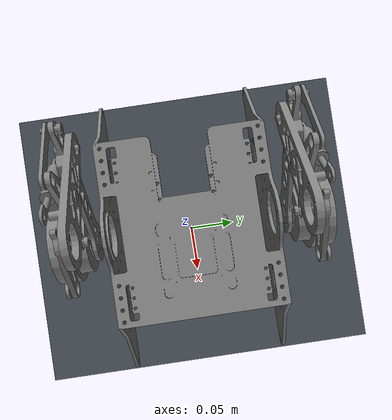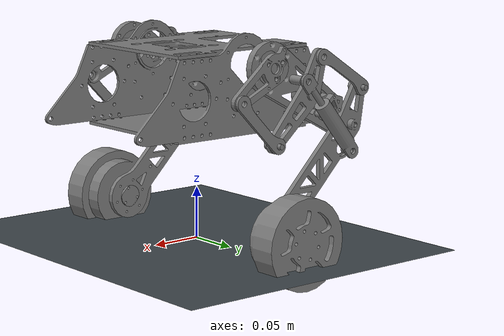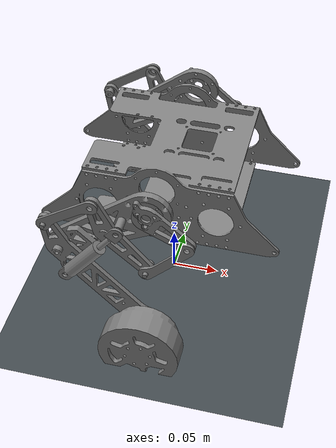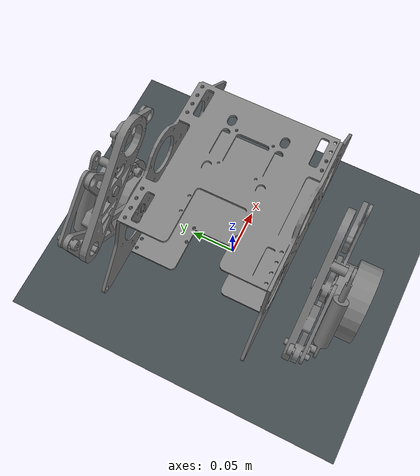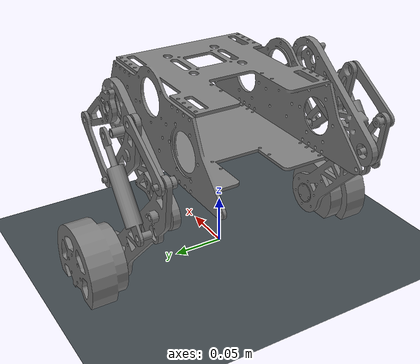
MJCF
<?xml version='1.0' encoding='utf-8'?>
<mujoco model="serial_stride_full_chassis_fixed_base">
  <compiler angle="radian" eulerseq="xyz" autolimits="true" balanceinertia="false" boundinertia="1e-8" meshdir=".." />
  <option gravity="0 0 -9.81" integrator="implicitfast" timestep="0.001" />
  <asset>
    <mesh name="base_link" file="meshes/base_link.stl" scale="0.001 0.001 0.001" />
    <mesh name="link_002" file="meshes/link_002.stl" scale="0.001 0.001 0.001" />
    <mesh name="link_003" file="meshes/link_003.stl" scale="0.001 0.001 0.001" />
    <mesh name="link_004" file="meshes/link_004.stl" scale="0.001 0.001 0.001" />
    <mesh name="link_005" file="meshes/link_005.stl" scale="0.001 0.001 0.001" />
    <mesh name="link_006" file="meshes/link_006.stl" scale="0.001 0.001 0.001" />
    <mesh name="link_007" file="meshes/link_007.stl" scale="0.001 0.001 0.001" />
    <mesh name="link_008" file="meshes/link_008.stl" scale="0.001 0.001 0.001" />
    <mesh name="link_009" file="meshes/link_009.stl" scale="0.001 0.001 0.001" />
    <mesh name="link_010" file="meshes/link_010.stl" scale="0.001 0.001 0.001" />
    <mesh name="link_011" file="meshes/link_011.stl" scale="0.001 0.001 0.001" />
    <mesh name="link_012" file="meshes/link_012.stl" scale="0.001 0.001 0.001" />
    <mesh name="link_013" file="meshes/link_013.stl" scale="0.001 0.001 0.001" />
    <mesh name="link_014" file="meshes/link_014.stl" scale="0.001 0.001 0.001" />
    <mesh name="link_015" file="meshes/link_015.stl" scale="0.001 0.001 0.001" />
    <mesh name="link_016" file="meshes/link_016.stl" scale="0.001 0.001 0.001" />
    <mesh name="link_017" file="meshes/link_017.stl" scale="0.001 0.001 0.001" />
    <mesh name="link_018" file="meshes/link_018.stl" scale="0.001 0.001 0.001" />
    <mesh name="link_019" file="meshes/link_019.stl" scale="0.001 0.001 0.001" />
    <mesh name="link_020" file="meshes/link_020.stl" scale="0.001 0.001 0.001" />
    <mesh name="link_021" file="meshes/link_021.stl" scale="0.001 0.001 0.001" />
    <mesh name="link_022" file="meshes/link_022.stl" scale="0.001 0.001 0.001" />
    <mesh name="link_023" file="meshes/link_023.stl" scale="0.001 0.001 0.001" />
    <mesh name="link_024" file="meshes/link_024.stl" scale="0.001 0.001 0.001" />
    <mesh name="link_025" file="meshes/link_025.stl" scale="0.001 0.001 0.001" />
  </asset>
  <worldbody>
    <geom name="ground" type="plane" size="2 2 0.1" pos="0 0 0" friction="0.8 0.005 0.0001" margin="0.001" solref="0.005 1" solimp="0.95 0.99 0.001" rgba="0.25 0.28 0.3 1" contype="1" conaffinity="2" /><body name="base_link" pos="0 0 0.1581569" euler="1.5707963267948966 0 3.141592653589793">
      <inertial pos="-0.0039338812 0.012467564 0.00023441092" mass="2.2" quat="0.99999671 0.0018797749 0.0011074883 -0.0013498581" diaginertia="0.0091017116 0.012533239 0.0081879634" />
      <geom name="base_link_mesh_1" type="mesh" mesh="base_link" pos="-6.988525e-06 0.044640137 0.069" euler="0 0 0" group="2" contype="0" conaffinity="0" />
      <site name="left_base_ref" type="sphere" pos="-6.988525e-06 -0.01914014 -0.107" quat="0 0 -0.7071067811865476 0.7071067811865476" size="0.003" rgba="1 0.2 0.2 1" group="3" />
      <site name="right_base_ref" type="sphere" pos="-6.988525e-06 -0.01914014 0.107" quat="0 0 -0.7071067811865476 0.7071067811865476" size="0.003" rgba="1 0.2 0.2 1" group="3" />
      <body name="link_002" pos="-6.988525e-06 -0.01914014 -0.107" euler="3.1415927 0 0">
        <joint name="left_joint_a" type="hinge" pos="0 0 0" axis="0 0 -1" ref="0.132318159422" limited="false" damping="0.05" armature="0.0001" />
        <inertial pos="0.043355873 -0.027890749 -0.0023513789" mass="0.068" quat="0.96005319 0.0057525521 -0.0053518464 -0.27970722" diaginertia="1.1089343e-05 0.000105919 0.00011583082" />
        <geom name="link_002_mesh_1" type="mesh" mesh="link_002" pos="0 -0.063780277 -0.176" euler="-3.1415927 0 0" group="2" contype="0" conaffinity="0" />
        <body name="link_005" pos="0.041902383 -0.027279852 0.0104">
          <joint name="link_005_joint" type="hinge" pos="0 0 0" axis="0 0 1" range="-1.57 1.57" limited="true" damping="0.05" armature="0.0001" />
          <inertial pos="-0.0086987915 -0.0056228993 -0.0059453537" mass="0.02" quat="0.94761075 0.0023155369 0.014721452 -0.31907958" diaginertia="1.37131295e-05 1.1046793e-06 1.4542671e-05" />
          <geom name="link_005_mesh_1" type="mesh" mesh="link_005" pos="-0.041902383 -0.036500425 -0.1864" euler="-3.1415927 0 0" group="2" contype="0" conaffinity="0" />
          <body name="link_006" pos="-0.041902383 -0.042944037 -0.0042">
            <joint name="link_006_joint" type="hinge" pos="0 0 0" axis="0 0 1" range="-1.57 1.57" limited="true" damping="0.05" armature="0.0001" />
            <inertial pos="0 0 -0.0030241159" mass="0.000773664835" quat="1 0 0 0" diaginertia="2.7147115e-08 2.7147115e-08 1e-08" />
            <site name="closure_001_b_site" type="sphere" pos="0 0 0.0031" quat="6.123234e-17 -1 -0 -0" size="0.003" rgba="0.2 0.8 1 1" group="3" />
            <geom name="link_006_mesh_1" type="mesh" mesh="link_006" pos="0 0.0064436116 -0.1822" euler="-3.1415927 0 0" group="2" contype="0" conaffinity="0" />
          <geom name="link_006_collision" type="mesh" friction="0.8 0.005 0.0001" margin="0.001" group="3" rgba="0.25 0.65 0.9 0.15" contype="2" conaffinity="1" mesh="link_006" pos="0 0.0064436116 -0.1822" euler="-3.1415927 0 0" /></body>
          <body name="link_007" pos="0.011896513 0.033977536 0.0015">
            <joint name="link_007_joint" type="hinge" pos="0 0 0" axis="0 0 1" range="-1.57 1.57" limited="true" damping="0.05" armature="0.0001" />
            <inertial pos="0.025983961 -0.0150738 -0.0015000061" mass="0.006" quat="0.95865809 0 0 -0.28456049" diaginertia="8.4666046e-08 2.8064641e-06 2.8821301e-06" />
            <geom name="link_007_mesh_1" type="mesh" mesh="link_007" pos="-0.053798896 -0.070477962 -0.1879" euler="-3.1415927 0 0" group="2" contype="0" conaffinity="0" />
            <body name="link_008" pos="0.05028286 -0.032735822 0.0038">
              <joint name="link_008_joint" type="hinge" pos="0 0 0" axis="0 0 1" range="-1.57 1.57" limited="true" damping="0.05" armature="0.0001" />
              <inertial pos="-1.6348715e-10 0 -0.012524115" mass="0.000773664845" quat="1 0 0 0" diaginertia="2.7147115e-08 2.7147117e-08 1e-08" />
              <site name="closure_002_b_site" type="sphere" pos="0 0 -0.00975" quat="6.123234e-17 -1 -0 -0" size="0.003" rgba="0.2 0.8 1 1" group="3" />
              <geom name="link_008_mesh_1" type="mesh" mesh="link_008" pos="-0.10408176 -0.03774214 -0.1917" euler="-3.1415927 0 0" group="2" contype="0" conaffinity="0" />
            <geom name="link_008_collision" type="mesh" friction="0.8 0.005 0.0001" margin="0.001" group="3" rgba="0.25 0.65 0.9 0.15" contype="2" conaffinity="1" mesh="link_008" pos="-0.10408176 -0.03774214 -0.1917" euler="-3.1415927 0 0" /></body>
          <geom name="link_007_collision" type="mesh" friction="0.8 0.005 0.0001" margin="0.001" group="3" rgba="0.25 0.65 0.9 0.15" contype="2" conaffinity="1" mesh="link_007" pos="-0.053798896 -0.070477962 -0.1879" euler="-3.1415927 0 0" /></body>
        <geom name="link_005_collision" type="mesh" friction="0.8 0.005 0.0001" margin="0.001" group="3" rgba="0.25 0.65 0.9 0.15" contype="2" conaffinity="1" mesh="link_005" pos="-0.041902383 -0.036500425 -0.1864" euler="-3.1415927 0 0" /></body>
        <body name="link_009" pos="0.092185243 -0.060015673 0.0113">
          <joint name="link_009_joint" type="hinge" pos="0 0 0" axis="0 0 1" range="-1.57 1.57" limited="true" damping="0.05" armature="0.0001" />
          <inertial pos="-0.044881355 -0.044738748 -0.0065144472" mass="0.056" quat="0.93100646 8.9174307e-05 0.00055309838 -0.36500228" diaginertia="0.00017003599 5.9620694e-06 0.00017553873" />
          <site name="closure_002_a_site" type="sphere" pos="0.011896513 0.033977536 -0.00535" quat="6.123234e-17 -1 -0 -0" size="0.003" rgba="0.2 0.8 1 1" group="3" />
          <site name="closure_003_a_site" type="sphere" pos="-0.0096563348 -0.022701383 0.003000003" quat="6.123234e-17 -1 -0 -0" size="0.003" rgba="0.2 0.8 1 1" group="3" />
          <geom name="link_009_mesh_1" type="mesh" mesh="link_009" pos="-0.092185243 -0.0037646034 -0.1873" euler="-3.1415927 0 0" group="2" contype="0" conaffinity="0" />
          <body name="link_010" pos="-0.092185243 -0.094476881 -0.002">
            <joint name="left_wheel_joint" type="hinge" pos="0 0 0" axis="0 0 1" limited="false" />
            <inertial pos="-5.6331932e-10 5.1670869e-10 0.02192814" mass="0.6" quat="0.92610537 6.6177875e-09 5.0505982e-09 -0.37726496" diaginertia="0.00031780174 0.000317777655 0.000484610865" />
            <site name="left_wheel_center" type="sphere" pos="0 0 0" size="0.004" rgba="0.2 1 0.2 1" group="3" />
            <geom name="link_010_mesh_1" type="mesh" mesh="link_010" pos="0 0.090712278 -0.1853" euler="-3.1415927 0 0" group="2" contype="0" conaffinity="0" />
          <geom name="left_wheel_collision" type="cylinder" pos="0 0 0" size="0.0429968 0.02475" friction="0.8 0.005 0.0001" margin="0.001" group="3" rgba="0.15 0.15 0.15 0.35" contype="2" conaffinity="1" /></body>
        <geom name="link_009_collision" type="mesh" friction="0.8 0.005 0.0001" margin="0.001" group="3" rgba="0.25 0.65 0.9 0.15" contype="2" conaffinity="1" mesh="link_009" pos="-0.092185243 -0.0037646034 -0.1873" euler="-3.1415927 0 0" /></body>
        <body name="link_011" pos="0.025674084 -0.012353157 0.0148">
          <joint name="link_011_joint" type="hinge" pos="0 0 0" axis="0 0 1" range="-1.57 1.57" limited="true" damping="0.05" armature="0.0001" />
          <inertial pos="0.009774161 -0.012096566 0.0058500007" mass="0.0015472861" quat="0.94282022 0 0 0.33330173" diaginertia="2.4763345e-07 1.47072335e-08 2.57431515e-07" />
          <geom name="link_011_mesh_1" type="mesh" mesh="link_011" pos="-0.025674084 -0.05142712 -0.1908" euler="-3.1415927 0 0" group="2" contype="0" conaffinity="0" />
          <body name="link_012" pos="0.017888614 -0.022139066 0.00585" euler="1.5707963 0.67960678 0">
            <joint name="link_012_joint" type="slide" pos="0 0 0" axis="0 0 1" range="-0.0231 0" limited="true" ref="-0.00676817164473078" armature="0.0001" />
            <inertial pos="0 -2.1792665e-09 0.027778315" mass="0.011455285" quat="1 -1.2953341e-08 0 0" diaginertia="3.25386905e-06 3.2636644e-06 3.1061596e-07" />
            <geom name="link_012_mesh_1" type="mesh" mesh="link_012" pos="-0.052291101 -0.19665 -0.004597767" euler="1.5707963 0 0.67960678" group="2" contype="0" conaffinity="0" />
            <body name="link_013" pos="0 0.00135 0.062" euler="-1.5707963 0 -0.67960678">
              <joint name="link_013_joint" type="hinge" pos="0 0 0" axis="0 0 1" range="-1.57 1.57" limited="true" damping="0.05" armature="0.0001" />
              <inertial pos="3.5097968e-09 1.3745365e-09 -0.0076999969" mass="0.00022249231" quat="1 0 0 0" diaginertia="1e-08 1e-08 1e-08" />
              <site name="closure_003_b_site" type="sphere" pos="2.725e-09 4.85e-10 -0.007699997" quat="6.123234e-17 -1 -0 -0" size="0.003" rgba="0.2 0.8 1 1" group="3" />
              <geom name="link_013_mesh_1" type="mesh" mesh="link_013" pos="-0.082528905 0.01893678 -0.198" euler="-3.1415927 0 0" group="2" contype="0" conaffinity="0" />
            <geom name="link_013_collision" type="mesh" friction="0.8 0.005 0.0001" margin="0.001" group="3" rgba="0.25 0.65 0.9 0.15" contype="2" conaffinity="1" mesh="link_013" pos="-0.082528905 0.01893678 -0.198" euler="-3.1415927 0 0" /></body>
          <geom name="link_012_collision" type="mesh" friction="0.8 0.005 0.0001" margin="0.001" group="3" rgba="0.25 0.65 0.9 0.15" contype="2" conaffinity="1" mesh="link_012" pos="-0.052291101 -0.19665 -0.004597767" euler="1.5707963 0 0.67960678" /></body>
        <geom name="link_011_collision" type="mesh" friction="0.8 0.005 0.0001" margin="0.001" group="3" rgba="0.25 0.65 0.9 0.15" contype="2" conaffinity="1" mesh="link_011" pos="-0.025674084 -0.05142712 -0.1908" euler="-3.1415927 0 0" /></body>
      <geom name="link_002_collision" type="mesh" friction="0.8 0.005 0.0001" margin="0.001" group="3" rgba="0.25 0.65 0.9 0.15" contype="2" conaffinity="1" mesh="link_002" pos="0 -0.063780277 -0.176" euler="-3.1415927 0 0" /></body>
      <body name="link_003" pos="-6.988525e-06 -0.01914014 -0.107" euler="3.1415927 0 0">
        <joint name="left_joint_b" type="hinge" pos="0 0 0" axis="0 0 1" ref="0.132318159422" limited="false" damping="0.05" armature="0.0001" />
        <inertial pos="-0.013750144 -0.0086053748 0.0051026116" mass="0.014" quat="0.95476232 -0.00082331343 0.0018096997 0.29736334" diaginertia="8.1373094e-07 5.4510139e-06 6.2085423e-06" />
        <geom name="link_003_mesh_1" type="mesh" mesh="link_003" pos="0 -0.063780277 -0.176" euler="-3.1415927 0 0" group="2" contype="0" conaffinity="0" />
        <body name="link_004" pos="-0.041902383 -0.027279852 0.0123">
          <joint name="link_004_joint" type="hinge" pos="0 0 0" axis="0 0 1" range="-1.57 1.57" limited="true" damping="0.05" armature="0.0001" />
          <inertial pos="0.019845961 -0.022550464 -0.0014999969" mass="0.006" quat="0.92621212 0 0 0.3770028" diaginertia="2.8064644e-06 8.4666035e-08 2.8821304e-06" />
          <site name="closure_001_a_site" type="sphere" pos="0.041902383 -0.042944037 -0.003" quat="6.123234e-17 -1 -0 -0" size="0.003" rgba="0.2 0.8 1 1" group="3" />
          <geom name="link_004_mesh_1" type="mesh" mesh="link_004" pos="0.041902383 -0.036500425 -0.1883" euler="-3.1415927 0 0" group="2" contype="0" conaffinity="0" />
        <geom name="link_004_collision" type="mesh" friction="0.8 0.005 0.0001" margin="0.001" group="3" rgba="0.25 0.65 0.9 0.15" contype="2" conaffinity="1" mesh="link_004" pos="0.041902383 -0.036500425 -0.1883" euler="-3.1415927 0 0" /></body>
      <geom name="link_003_collision" type="mesh" friction="0.8 0.005 0.0001" margin="0.001" group="3" rgba="0.25 0.65 0.9 0.15" contype="2" conaffinity="1" mesh="link_003" pos="0 -0.063780277 -0.176" euler="-3.1415927 0 0" /></body>
      <body name="link_014" pos="-6.988525e-06 -0.01914014 0.107">
        <joint name="right_joint_a" type="hinge" pos="0 0 0" axis="0 0 1" ref="0.132318159422" limited="false" damping="0.05" armature="0.0001" />
        <inertial pos="0.043355873 0.027890749 -0.002351379" mass="0.068" quat="0.96005319 -0.0057525511 -0.0053518473 0.27970722" diaginertia="1.1089343e-05 0.000105919 0.00011583082" />
        <geom name="link_014_mesh_1" type="mesh" mesh="link_014" pos="0 0.063780277 -0.038" euler="0 0 0" group="2" contype="0" conaffinity="0" />
        <body name="link_017" pos="0.041902383 0.027279852 0.0104">
          <joint name="link_017_joint" type="hinge" pos="0 0 0" axis="0 0 1" range="-1.57 1.57" limited="true" damping="0.05" armature="0.0001" />
          <inertial pos="-0.0086987905 0.0056228986 -0.0059453564" mass="0.02" quat="0.94761075 -0.0023155297 0.014721406 0.31907958" diaginertia="1.37131295e-05 1.1046793e-06 1.4542671e-05" />
          <site name="closure_005_b_site" type="sphere" pos="-0.041902383 0.042944037 -0.0043750004" quat="1 0 -0 0" size="0.003" rgba="0.2 0.8 1 1" group="3" />
          <geom name="link_017_mesh_1" type="mesh" mesh="link_017" pos="-0.041902383 0.036500425 -0.0484" euler="0 0 0" group="2" contype="0" conaffinity="0" />
          <body name="link_019" pos="0.011896513 -0.033977536 0.0015">
            <joint name="link_019_joint" type="hinge" pos="0 0 0" axis="0 0 1" range="-1.57 1.57" limited="true" damping="0.05" armature="0.0001" />
            <inertial pos="0.025983961 0.0150738 -0.0014999985" mass="0.006" quat="0.95865809 0 0 0.28456049" diaginertia="8.4666046e-08 2.8064641e-06 2.8821301e-06" />
            <geom name="link_019_mesh_1" type="mesh" mesh="link_019" pos="-0.053798896 0.070477962 -0.0499" euler="0 0 0" group="2" contype="0" conaffinity="0" />
            <body name="link_021" pos="0.05028286 0.032735822 -0.0057">
              <joint name="link_021_joint" type="hinge" pos="0 0 0" axis="0 0 1" range="-1.57 1.57" limited="true" damping="0.05" armature="0.0001" />
              <inertial pos="-1.6983999e-10 -1.0368893e-10 -0.00302412" mass="0.000773664845" quat="1 0 0 0" diaginertia="2.7147115e-08 2.7147117e-08 1e-08" />
              <site name="closure_006_a_site" type="sphere" pos="0 0 -0.00025" quat="1 0 -0 0" size="0.003" rgba="0.2 0.8 1 1" group="3" />
              <geom name="link_021_mesh_1" type="mesh" mesh="link_021" pos="-0.10408176 0.03774214 -0.0442" euler="0 0 0" group="2" contype="0" conaffinity="0" />
            <geom name="link_021_collision" type="mesh" friction="0.8 0.005 0.0001" margin="0.001" group="3" rgba="0.25 0.65 0.9 0.15" contype="2" conaffinity="1" mesh="link_021" pos="-0.10408176 0.03774214 -0.0442" euler="0 0 0" /></body>
          <geom name="link_019_collision" type="mesh" friction="0.8 0.005 0.0001" margin="0.001" group="3" rgba="0.25 0.65 0.9 0.15" contype="2" conaffinity="1" mesh="link_019" pos="-0.053798896 0.070477962 -0.0499" euler="0 0 0" /></body>
        <geom name="link_017_collision" type="mesh" friction="0.8 0.005 0.0001" margin="0.001" group="3" rgba="0.25 0.65 0.9 0.15" contype="2" conaffinity="1" mesh="link_017" pos="-0.041902383 0.036500425 -0.0484" euler="0 0 0" /></body>
        <body name="link_020" pos="0.092185243 0.060015673 0.0113">
          <joint name="link_020_joint" type="hinge" pos="0 0 0" axis="0 0 1" range="-1.57 1.57" limited="true" damping="0.05" armature="0.0001" />
          <inertial pos="-0.044881355 0.044738748 -0.006514451" mass="0.056" quat="0.93100646 -8.9174364e-05 0.00055309824 0.36500228" diaginertia="0.00017003599 5.9620694e-06 0.00017553873" />
          <site name="closure_006_b_site" type="sphere" pos="0.011896513 -0.033977536 -0.00535" quat="1 0 -0 0" size="0.003" rgba="0.2 0.8 1 1" group="3" />
          <site name="closure_007_a_site" type="sphere" pos="-0.0096563348 0.022701383 0.0029999992" quat="1 0 -0 0" size="0.003" rgba="0.2 0.8 1 1" group="3" />
          <geom name="link_020_mesh_1" type="mesh" mesh="link_020" pos="-0.092185243 0.0037646034 -0.0493" euler="0 0 0" group="2" contype="0" conaffinity="0" />
          <body name="link_025" pos="-0.092185243 0.094476881 0.0395">
            <joint name="right_wheel_joint" type="hinge" pos="0 0 0" axis="0 0 1" limited="false" />
            <inertial pos="-5.644982e-10 -5.174013e-10 -0.019571861" mass="0.6" quat="0.92610546 -6.6227602e-09 5.0848299e-09 0.37726473" diaginertia="0.00031780174 0.000317777655 0.000484610865" />
            <site name="right_wheel_center" type="sphere" pos="0 0 0" size="0.004" rgba="0.2 1 0.2 1" group="3" />
            <geom name="link_025_mesh_1" type="mesh" mesh="link_025" pos="0 -0.090712278 -0.0888" euler="0 0 0" group="2" contype="0" conaffinity="0" />
          <geom name="right_wheel_collision" type="cylinder" pos="0 0 0" size="0.0429968 0.02475" friction="0.8 0.005 0.0001" margin="0.001" group="3" rgba="0.15 0.15 0.15 0.35" contype="2" conaffinity="1" /></body>
        <geom name="link_020_collision" type="mesh" friction="0.8 0.005 0.0001" margin="0.001" group="3" rgba="0.25 0.65 0.9 0.15" contype="2" conaffinity="1" mesh="link_020" pos="-0.092185243 0.0037646034 -0.0493" euler="0 0 0" /></body>
        <body name="link_022" pos="0.025674084 0.012353157 0.022">
          <joint name="link_022_joint" type="hinge" pos="0 0 0" axis="0 0 1" range="-1.57 1.57" limited="true" damping="0.05" armature="0.0001" />
          <inertial pos="0.0097741539 0.012096557 -0.0013500001" mass="0.0015472861" quat="0.94282022 0 0 -0.33330173" diaginertia="2.4763345e-07 1.47072335e-08 2.57431515e-07" />
          <geom name="link_022_mesh_1" type="mesh" mesh="link_022" pos="-0.025674084 0.05142712 -0.06" euler="0 0 0" group="2" contype="0" conaffinity="0" />
          <body name="link_023" pos="0.017888614 0.022139066 -0.00135" euler="-1.5707963 0.67960678 0">
            <joint name="link_023_joint" type="slide" pos="0 0 0" axis="0 0 1" range="-0.0231 0" limited="true" ref="-0.00676817159312371" armature="0.0001" />
            <inertial pos="0 6.0886668e-10 0.027778318" mass="0.011455285" quat="1 0 0 0" diaginertia="3.25386905e-06 3.2636644e-06 3.1061596e-07" />
            <geom name="link_023_mesh_1" type="mesh" mesh="link_023" pos="-0.052291101 0.05865 -0.004597767" euler="1.5707963 0 0.67960678" group="2" contype="0" conaffinity="0" />
            <body name="link_024" pos="0 -0.00135 0.062" euler="1.5707963 0 0.67960678">
              <joint name="link_024_joint" type="hinge" pos="0 0 0" axis="0 0 1" range="-1.57 1.57" limited="true" damping="0.05" armature="0.0001" />
              <inertial pos="3.509788e-09 -1.374538e-09 -0.0077000008" mass="0.00022249231" quat="1 0 0 0" diaginertia="1e-08 1e-08 1e-08" />
              <site name="closure_007_b_site" type="sphere" pos="2.725e-09 -4.85e-10 -0.0077000008" quat="1 0 -0 0" size="0.003" rgba="0.2 0.8 1 1" group="3" />
              <geom name="link_024_mesh_1" type="mesh" mesh="link_024" pos="-0.082528905 -0.01893678 -0.06" euler="0 0 0" group="2" contype="0" conaffinity="0" />
            <geom name="link_024_collision" type="mesh" friction="0.8 0.005 0.0001" margin="0.001" group="3" rgba="0.25 0.65 0.9 0.15" contype="2" conaffinity="1" mesh="link_024" pos="-0.082528905 -0.01893678 -0.06" euler="0 0 0" /></body>
          <geom name="link_023_collision" type="mesh" friction="0.8 0.005 0.0001" margin="0.001" group="3" rgba="0.25 0.65 0.9 0.15" contype="2" conaffinity="1" mesh="link_023" pos="-0.052291101 0.05865 -0.004597767" euler="1.5707963 0 0.67960678" /></body>
        <geom name="link_022_collision" type="mesh" friction="0.8 0.005 0.0001" margin="0.001" group="3" rgba="0.25 0.65 0.9 0.15" contype="2" conaffinity="1" mesh="link_022" pos="-0.025674084 0.05142712 -0.06" euler="0 0 0" /></body>
      <geom name="link_014_collision" type="mesh" friction="0.8 0.005 0.0001" margin="0.001" group="3" rgba="0.25 0.65 0.9 0.15" contype="2" conaffinity="1" mesh="link_014" pos="0 0.063780277 -0.038" euler="0 0 0" /></body>
      <body name="link_015" pos="-6.988525e-06 -0.01914014 0.107">
        <joint name="right_joint_b" type="hinge" pos="0 0 0" axis="0 0 -1" ref="0.132318159422" limited="false" damping="0.05" armature="0.0001" />
        <inertial pos="-0.013750144 0.0086053748 0.0051026154" mass="0.014" quat="0.95476232 0.00082331345 0.0018096997 -0.29736334" diaginertia="8.1373094e-07 5.4510139e-06 6.2085423e-06" />
        <geom name="link_015_mesh_1" type="mesh" mesh="link_015" pos="0 0.063780277 -0.038" euler="0 0 0" group="2" contype="0" conaffinity="0" />
        <body name="link_016" pos="-0.041902383 0.027279852 0.0093">
          <joint name="link_016_joint" type="hinge" pos="0 0 0" axis="0 0 1" range="-1.57 1.57" limited="true" damping="0.05" armature="0.0001" />
          <inertial pos="0.019845961 0.022550464 0.0014999992" mass="0.006" quat="0.92621212 0 0 -0.3770028" diaginertia="2.8064644e-06 8.4666035e-08 2.8821304e-06" />
          <geom name="link_016_mesh_1" type="mesh" mesh="link_016" pos="0.041902383 0.036500425 -0.0473" euler="0 0 0" group="2" contype="0" conaffinity="0" />
          <body name="link_018" pos="0.041902383 0.042944037 0.0015">
            <joint name="link_018_joint" type="hinge" pos="0 0 0" axis="0 0 1" range="-1.57 1.57" limited="true" damping="0.05" armature="0.0001" />
            <inertial pos="0 0 -0.0076241207" mass="0.000773664835" quat="1 0 0 0" diaginertia="2.7147115e-08 2.7147115e-08 1e-08" />
            <site name="closure_005_a_site" type="sphere" pos="0 -2.35e-10 -0.0047750004" quat="1 0 -0 0" size="0.003" rgba="0.2 0.8 1 1" group="3" />
            <geom name="link_018_mesh_1" type="mesh" mesh="link_018" pos="0 -0.0064436116 -0.0488" euler="0 0 0" group="2" contype="0" conaffinity="0" />
          <geom name="link_018_collision" type="mesh" friction="0.8 0.005 0.0001" margin="0.001" group="3" rgba="0.25 0.65 0.9 0.15" contype="2" conaffinity="1" mesh="link_018" pos="0 -0.0064436116 -0.0488" euler="0 0 0" /></body>
        <geom name="link_016_collision" type="mesh" friction="0.8 0.005 0.0001" margin="0.001" group="3" rgba="0.25 0.65 0.9 0.15" contype="2" conaffinity="1" mesh="link_016" pos="0.041902383 0.036500425 -0.0473" euler="0 0 0" /></body>
      <geom name="link_015_collision" type="mesh" friction="0.8 0.005 0.0001" margin="0.001" group="3" rgba="0.25 0.65 0.9 0.15" contype="2" conaffinity="1" mesh="link_015" pos="0 0.063780277 -0.038" euler="0 0 0" /></body>
    <geom name="base_collision" type="box" pos="0 0 0" size="0.12581208 0.047640137 0.072" friction="0.8 0.005 0.0001" margin="0.001" group="3" rgba="0.2 0.45 0.8 0.25" contype="2" conaffinity="1" /></body>
  </worldbody>
  <contact>
    <exclude body1="base_link" body2="link_002" />
    <exclude body1="base_link" body2="link_003" />
    <exclude body1="base_link" body2="link_004" />
    <exclude body1="base_link" body2="link_005" />
    <exclude body1="base_link" body2="link_006" />
    <exclude body1="base_link" body2="link_007" />
    <exclude body1="base_link" body2="link_008" />
    <exclude body1="base_link" body2="link_009" />
    <exclude body1="base_link" body2="link_011" />
    <exclude body1="base_link" body2="link_012" />
    <exclude body1="base_link" body2="link_013" />
    <exclude body1="base_link" body2="link_014" />
    <exclude body1="base_link" body2="link_015" />
    <exclude body1="base_link" body2="link_016" />
    <exclude body1="base_link" body2="link_017" />
    <exclude body1="base_link" body2="link_018" />
    <exclude body1="base_link" body2="link_019" />
    <exclude body1="base_link" body2="link_020" />
    <exclude body1="base_link" body2="link_021" />
    <exclude body1="base_link" body2="link_022" />
    <exclude body1="base_link" body2="link_023" />
    <exclude body1="base_link" body2="link_024" />
    <exclude body1="link_002" body2="link_003" />
    <exclude body1="link_002" body2="link_004" />
    <exclude body1="link_002" body2="link_005" />
    <exclude body1="link_002" body2="link_006" />
    <exclude body1="link_002" body2="link_007" />
    <exclude body1="link_002" body2="link_008" />
    <exclude body1="link_002" body2="link_009" />
    <exclude body1="link_002" body2="link_011" />
    <exclude body1="link_002" body2="link_012" />
    <exclude body1="link_002" body2="link_013" />
    <exclude body1="link_003" body2="link_004" />
    <exclude body1="link_003" body2="link_005" />
    <exclude body1="link_003" body2="link_006" />
    <exclude body1="link_003" body2="link_007" />
    <exclude body1="link_003" body2="link_008" />
    <exclude body1="link_003" body2="link_009" />
    <exclude body1="link_003" body2="link_011" />
    <exclude body1="link_003" body2="link_012" />
    <exclude body1="link_003" body2="link_013" />
    <exclude body1="link_004" body2="link_005" />
    <exclude body1="link_004" body2="link_006" />
    <exclude body1="link_004" body2="link_007" />
    <exclude body1="link_004" body2="link_008" />
    <exclude body1="link_004" body2="link_009" />
    <exclude body1="link_004" body2="link_011" />
    <exclude body1="link_004" body2="link_012" />
    <exclude body1="link_004" body2="link_013" />
    <exclude body1="link_005" body2="link_006" />
    <exclude body1="link_005" body2="link_007" />
    <exclude body1="link_005" body2="link_008" />
    <exclude body1="link_005" body2="link_009" />
    <exclude body1="link_005" body2="link_011" />
    <exclude body1="link_005" body2="link_012" />
    <exclude body1="link_005" body2="link_013" />
    <exclude body1="link_006" body2="link_007" />
    <exclude body1="link_006" body2="link_008" />
    <exclude body1="link_006" body2="link_009" />
    <exclude body1="link_006" body2="link_011" />
    <exclude body1="link_006" body2="link_012" />
    <exclude body1="link_006" body2="link_013" />
    <exclude body1="link_007" body2="link_008" />
    <exclude body1="link_007" body2="link_009" />
    <exclude body1="link_007" body2="link_011" />
    <exclude body1="link_007" body2="link_012" />
    <exclude body1="link_007" body2="link_013" />
    <exclude body1="link_008" body2="link_009" />
    <exclude body1="link_008" body2="link_011" />
    <exclude body1="link_008" body2="link_012" />
    <exclude body1="link_008" body2="link_013" />
    <exclude body1="link_009" body2="link_011" />
    <exclude body1="link_009" body2="link_012" />
    <exclude body1="link_009" body2="link_013" />
    <exclude body1="link_011" body2="link_012" />
    <exclude body1="link_011" body2="link_013" />
    <exclude body1="link_012" body2="link_013" />
    <exclude body1="link_014" body2="link_015" />
    <exclude body1="link_014" body2="link_016" />
    <exclude body1="link_014" body2="link_017" />
    <exclude body1="link_014" body2="link_018" />
    <exclude body1="link_014" body2="link_019" />
    <exclude body1="link_014" body2="link_020" />
    <exclude body1="link_014" body2="link_021" />
    <exclude body1="link_014" body2="link_022" />
    <exclude body1="link_014" body2="link_023" />
    <exclude body1="link_014" body2="link_024" />
    <exclude body1="link_015" body2="link_016" />
    <exclude body1="link_015" body2="link_017" />
    <exclude body1="link_015" body2="link_018" />
    <exclude body1="link_015" body2="link_019" />
    <exclude body1="link_015" body2="link_020" />
    <exclude body1="link_015" body2="link_021" />
    <exclude body1="link_015" body2="link_022" />
    <exclude body1="link_015" body2="link_023" />
    <exclude body1="link_015" body2="link_024" />
    <exclude body1="link_016" body2="link_017" />
    <exclude body1="link_016" body2="link_018" />
    <exclude body1="link_016" body2="link_019" />
    <exclude body1="link_016" body2="link_020" />
    <exclude body1="link_016" body2="link_021" />
    <exclude body1="link_016" body2="link_022" />
    <exclude body1="link_016" body2="link_023" />
    <exclude body1="link_016" body2="link_024" />
    <exclude body1="link_017" body2="link_018" />
    <exclude body1="link_017" body2="link_019" />
    <exclude body1="link_017" body2="link_020" />
    <exclude body1="link_017" body2="link_021" />
    <exclude body1="link_017" body2="link_022" />
    <exclude body1="link_017" body2="link_023" />
    <exclude body1="link_017" body2="link_024" />
    <exclude body1="link_018" body2="link_019" />
    <exclude body1="link_018" body2="link_020" />
    <exclude body1="link_018" body2="link_021" />
    <exclude body1="link_018" body2="link_022" />
    <exclude body1="link_018" body2="link_023" />
    <exclude body1="link_018" body2="link_024" />
    <exclude body1="link_019" body2="link_020" />
    <exclude body1="link_019" body2="link_021" />
    <exclude body1="link_019" body2="link_022" />
    <exclude body1="link_019" body2="link_023" />
    <exclude body1="link_019" body2="link_024" />
    <exclude body1="link_020" body2="link_021" />
    <exclude body1="link_020" body2="link_022" />
    <exclude body1="link_020" body2="link_023" />
    <exclude body1="link_020" body2="link_024" />
    <exclude body1="link_021" body2="link_022" />
    <exclude body1="link_021" body2="link_023" />
    <exclude body1="link_021" body2="link_024" />
    <exclude body1="link_022" body2="link_023" />
    <exclude body1="link_022" body2="link_024" />
    <exclude body1="link_023" body2="link_024" />
  <pair geom1="ground" geom2="base_collision" condim="3" friction="0.8 0.005 0.0001" margin="0.001" solref="0.005 1" solimp="0.95 0.99 0.001" /><pair geom1="ground" geom2="link_002_collision" condim="3" friction="0.8 0.005 0.0001" margin="0.001" solref="0.005 1" solimp="0.95 0.99 0.001" /><pair geom1="ground" geom2="link_003_collision" condim="3" friction="0.8 0.005 0.0001" margin="0.001" solref="0.005 1" solimp="0.95 0.99 0.001" /><pair geom1="ground" geom2="link_004_collision" condim="3" friction="0.8 0.005 0.0001" margin="0.001" solref="0.005 1" solimp="0.95 0.99 0.001" /><pair geom1="ground" geom2="link_005_collision" condim="3" friction="0.8 0.005 0.0001" margin="0.001" solref="0.005 1" solimp="0.95 0.99 0.001" /><pair geom1="ground" geom2="link_006_collision" condim="3" friction="0.8 0.005 0.0001" margin="0.001" solref="0.005 1" solimp="0.95 0.99 0.001" /><pair geom1="ground" geom2="link_007_collision" condim="3" friction="0.8 0.005 0.0001" margin="0.001" solref="0.005 1" solimp="0.95 0.99 0.001" /><pair geom1="ground" geom2="link_008_collision" condim="3" friction="0.8 0.005 0.0001" margin="0.001" solref="0.005 1" solimp="0.95 0.99 0.001" /><pair geom1="ground" geom2="link_009_collision" condim="3" friction="0.8 0.005 0.0001" margin="0.001" solref="0.005 1" solimp="0.95 0.99 0.001" /><pair geom1="ground" geom2="link_011_collision" condim="3" friction="0.8 0.005 0.0001" margin="0.001" solref="0.005 1" solimp="0.95 0.99 0.001" /><pair geom1="ground" geom2="link_012_collision" condim="3" friction="0.8 0.005 0.0001" margin="0.001" solref="0.005 1" solimp="0.95 0.99 0.001" /><pair geom1="ground" geom2="link_013_collision" condim="3" friction="0.8 0.005 0.0001" margin="0.001" solref="0.005 1" solimp="0.95 0.99 0.001" /><pair geom1="ground" geom2="link_014_collision" condim="3" friction="0.8 0.005 0.0001" margin="0.001" solref="0.005 1" solimp="0.95 0.99 0.001" /><pair geom1="ground" geom2="link_015_collision" condim="3" friction="0.8 0.005 0.0001" margin="0.001" solref="0.005 1" solimp="0.95 0.99 0.001" /><pair geom1="ground" geom2="link_016_collision" condim="3" friction="0.8 0.005 0.0001" margin="0.001" solref="0.005 1" solimp="0.95 0.99 0.001" /><pair geom1="ground" geom2="link_017_collision" condim="3" friction="0.8 0.005 0.0001" margin="0.001" solref="0.005 1" solimp="0.95 0.99 0.001" /><pair geom1="ground" geom2="link_018_collision" condim="3" friction="0.8 0.005 0.0001" margin="0.001" solref="0.005 1" solimp="0.95 0.99 0.001" /><pair geom1="ground" geom2="link_019_collision" condim="3" friction="0.8 0.005 0.0001" margin="0.001" solref="0.005 1" solimp="0.95 0.99 0.001" /><pair geom1="ground" geom2="link_020_collision" condim="3" friction="0.8 0.005 0.0001" margin="0.001" solref="0.005 1" solimp="0.95 0.99 0.001" /><pair geom1="ground" geom2="link_021_collision" condim="3" friction="0.8 0.005 0.0001" margin="0.001" solref="0.005 1" solimp="0.95 0.99 0.001" /><pair geom1="ground" geom2="link_022_collision" condim="3" friction="0.8 0.005 0.0001" margin="0.001" solref="0.005 1" solimp="0.95 0.99 0.001" /><pair geom1="ground" geom2="link_023_collision" condim="3" friction="0.8 0.005 0.0001" margin="0.001" solref="0.005 1" solimp="0.95 0.99 0.001" /><pair geom1="ground" geom2="link_024_collision" condim="3" friction="0.8 0.005 0.0001" margin="0.001" solref="0.005 1" solimp="0.95 0.99 0.001" /><pair geom1="ground" geom2="left_wheel_collision" condim="3" friction="0.8 0.005 0.0001" margin="0.001" solref="0.005 1" solimp="0.95 0.99 0.001" /><pair geom1="ground" geom2="right_wheel_collision" condim="3" friction="0.8 0.005 0.0001" margin="0.001" solref="0.005 1" solimp="0.95 0.99 0.001" /></contact>
  <equality>
    <connect name="closure_001" solref="0.004 1" solimp="0.99 0.999 0.0001 0.5 2" site1="closure_001_a_site" site2="closure_001_b_site" />
    <connect name="closure_002" solref="0.004 1" solimp="0.99 0.999 0.0001 0.5 2" site1="closure_002_a_site" site2="closure_002_b_site" />
    <connect name="closure_003" solref="0.004 1" solimp="0.99 0.999 0.0001 0.5 2" site1="closure_003_a_site" site2="closure_003_b_site" />
    <connect name="closure_005" solref="0.004 1" solimp="0.99 0.999 0.0001 0.5 2" site1="closure_005_a_site" site2="closure_005_b_site" />
    <connect name="closure_006" solref="0.004 1" solimp="0.99 0.999 0.0001 0.5 2" site1="closure_006_a_site" site2="closure_006_b_site" />
    <connect name="closure_007" solref="0.004 1" solimp="0.99 0.999 0.0001 0.5 2" site1="closure_007_a_site" site2="closure_007_b_site" />
  </equality>
  <tendon><fixed name="left_leg_rotation" limited="false"><joint joint="left_joint_a" coef="0.5" /><joint joint="left_joint_b" coef="-0.5" /></fixed><fixed name="right_leg_rotation" limited="false"><joint joint="right_joint_a" coef="0.5" /><joint joint="right_joint_b" coef="-0.5" /></fixed><fixed name="left_leg_shape" limited="true" range="-0.351 0.3505"><joint joint="left_joint_a" coef="0.5" /><joint joint="left_joint_b" coef="0.5" /></fixed><fixed name="right_leg_shape" limited="true" range="-0.351 0.3505"><joint joint="right_joint_a" coef="0.5" /><joint joint="right_joint_b" coef="0.5" /></fixed></tendon><actuator>
    <motor name="left_joint_a_motor" joint="left_joint_a" gear="1" ctrllimited="true" ctrlrange="-12.5 12.5" forcelimited="true" forcerange="-12.5 12.5" /><motor name="left_joint_b_motor" joint="left_joint_b" gear="1" ctrllimited="true" ctrlrange="-12.5 12.5" forcelimited="true" forcerange="-12.5 12.5" /><motor name="right_joint_a_motor" joint="right_joint_a" gear="1" ctrllimited="true" ctrlrange="-12.5 12.5" forcelimited="true" forcerange="-12.5 12.5" /><motor name="right_joint_b_motor" joint="right_joint_b" gear="1" ctrllimited="true" ctrlrange="-12.5 12.5" forcelimited="true" forcerange="-12.5 12.5" /><motor name="left_wheel_motor" joint="left_wheel_joint" gear="1" ctrllimited="true" ctrlrange="-2 2" forcelimited="true" forcerange="-2 2" /><motor name="right_wheel_motor" joint="right_wheel_joint" gear="1" ctrllimited="true" ctrlrange="-2 2" forcelimited="true" forcerange="-2 2" /></actuator>
  <sensor>
    <framepos name="right_wheel_position" objtype="site" objname="right_wheel_center" reftype="site" refname="right_base_ref" />
    <framepos name="left_wheel_position" objtype="site" objname="left_wheel_center" reftype="site" refname="left_base_ref" />
  </sensor>
  <keyframe>
    <key name="CALIB_MID" qpos="-1.15076513797323e-14 -0.210671685237518 -2.00530598352243e-17 0.210671699474584 -5.12115605252366e-15 -0.210671700399651 0.21067170358124 -0.0226677887577177 -0.0115566140447875 -3.28649805217047e-10 -1.12833551843262e-14 0.210671685237518 -1.14542694161523e-14 0.210671688065468 -0.210671702302534 1.17980716703582e-14 0.210671703227601 -0.210671706424756 0.0226677889991429 -0.0115566140598085 3.28658708419814e-10 -1.16211953955226e-14 -0.210671682874863 2.41056735740768e-09" ctrl="0 0 0 0 0 0" />
    <key name="CROUCH" qpos="-0.343704199000005 -0.680360575398742 -3.06135245926384e-17 0.68036058508472 6.90595152460238e-14 -0.680360592150103 0.336656433951906 -0.032894705747277 -0.023008514846011 -4.50568132087548e-10 -0.343704199000007 0.680360575398742 -0.343704199000005 0.680360578422375 -0.680360588108353 -2.1296450489475e-14 0.680360595173735 -0.336656437066405 0.0328947055886976 -0.0230085148680617 4.50574197604843e-10 -0.343704199000007 -0.680360573796544 7.77809611632194e-09" ctrl="0 0 0 0 0 0" />
    <key name="EXTEND" qpos="0.335214916999987 0.341947969661925 5.09986160124489e-17 -0.341947949707419 7.55163407173552e-14 0.341947951516484 -0.00673306884117676 0.0529590073021115 0 7.49702695999039e-10 0.335214916999989 -0.341947969661925 0.335214916999988 -0.341947966725153 0.341947946770646 -2.76550522783962e-14 -0.341947948579712 0.00673306594698357 -0.0529590067791406 0 -7.49852870022349e-10 0.335214916999988 0.341947973272542 -3.03126843846571e-09" ctrl="0 0 0 0 0 0" />
    <key name="INTERMEDIATE_N025" qpos="-0.250000000000007 -0.566382787975436 -5.46845379330543e-17 0.566382798868088 4.00609613051866e-14 -0.566382803973897 0.316382833822947 -0.0365906675281981 -0.0202121586035077 -5.2585402159409e-10 -0.250000000000008 0.566382787975436 -0.250000000000007 0.566382790952733 -0.566382801845385 -1.64085240841747e-14 0.566382806951194 -0.316382836879632 0.0365906674893172 -0.0202121586252887 5.25874353093123e-10 -0.250000000000009 -0.566382786243065 6.4559734150495e-09" ctrl="0 0 0 0 0 0" />
    <key name="INTERMEDIATE_N0125" qpos="-0.125000000000009 -0.396779183734263 -3.9250068122137e-17 0.396779196267196 8.38182453729154e-15 -0.396779199077166 0.271779216293097 -0.0343256399874427 -0.0160369298488139 -5.02520495054132e-10 -0.12500000000001 0.396779183734262 -0.12500000000001 0.396779186630757 -0.39677919916369 1.05730684252088e-15 0.39677920197366 -0.271779219236464 0.0343256400985233 -0.0160369298680912 5.02535204505888e-10 -0.12500000000001 -0.396779181727828 4.51379625165766e-09" ctrl="0 0 0 0 0 0" />
    <key name="INTERMEDIATE_P0125" qpos="0.124999999999988 -0.0119512805163035 -7.09202257616361e-19 0.0119512965971771 1.89748257213745e-16 -0.0119512960757173 0.136951284794182 -0.00151815657231429 -0.00702917026546022 -1.75881433392845e-11 0.124999999999988 0.0119512805163034 0.124999999999988 0.0119512833199226 -0.011951299400796 1.43893917720452e-14 0.0119512988793358 -0.136951287583429 0.00151815692542701 -0.00702917027524711 1.759162764655e-11 0.124999999999988 -0.0119512777381537 2.02653174495136e-10" ctrl="0 0 0 0 0 0" />
    <key name="INTERMEDIATE_P025" qpos="0.249999999999988 0.196096607369222 2.43667869744009e-17 -0.196096589160651 2.47718713718311e-14 0.196096590646414 0.0539033840477577 0.0283078712065321 -0.00270904960908906 4.0653545616156e-10 0.249999999999988 -0.196096607369223 0.249999999999988 -0.196096604519177 0.196096586310606 8.11600590616623e-15 -0.196096587796369 -0.0539033868553409 -0.0283078707523505 -0.0027090496131639 -4.06536414251688e-10 0.249999999999988 0.196096610618634 -2.07889473835855e-09" ctrl="0 0 0 0 0 0" />
  <key name="ROTATION_N180" qpos="-3.14159265358979 -0.210671685237518 -2.00530598352243e-17 0.210671699474584 -5.12115605252366e-15 -0.210671700399651 0.21067170358124 -0.0226677887577177 -0.0115566140447875 -3.28649805217047e-10 3.14159265358979 0.210671685237518 -3.14159265358979 0.210671688065468 -0.210671702302534 1.17980716703582e-14 0.210671703227601 -0.210671706424756 0.0226677889991429 -0.0115566140598085 3.28658708419814e-10 3.14159265358979 -0.210671682874863 2.41056735740768e-09" ctrl="0 0 0 0 0 0" /><key name="ROTATION_N090" qpos="-1.5707963267949 -0.210671685237518 -2.00530598352243e-17 0.210671699474584 -5.12115605252366e-15 -0.210671700399651 0.21067170358124 -0.0226677887577177 -0.0115566140447875 -3.28649805217047e-10 1.5707963267949 0.210671685237518 -1.5707963267949 0.210671688065468 -0.210671702302534 1.17980716703582e-14 0.210671703227601 -0.210671706424756 0.0226677889991429 -0.0115566140598085 3.28658708419814e-10 1.5707963267949 -0.210671682874863 2.41056735740768e-09" ctrl="0 0 0 0 0 0" /><key name="ROTATION_P090" qpos="1.5707963267949 -0.210671685237518 -2.00530598352243e-17 0.210671699474584 -5.12115605252366e-15 -0.210671700399651 0.21067170358124 -0.0226677887577177 -0.0115566140447875 -3.28649805217047e-10 -1.5707963267949 0.210671685237518 1.5707963267949 0.210671688065468 -0.210671702302534 1.17980716703582e-14 0.210671703227601 -0.210671706424756 0.0226677889991429 -0.0115566140598085 3.28658708419814e-10 -1.5707963267949 -0.210671682874863 2.41056735740768e-09" ctrl="0 0 0 0 0 0" /><key name="ROTATION_P180" qpos="3.14159265358979 -0.210671685237518 -2.00530598352243e-17 0.210671699474584 -5.12115605252366e-15 -0.210671700399651 0.21067170358124 -0.0226677887577177 -0.0115566140447875 -3.28649805217047e-10 -3.14159265358979 0.210671685237518 3.14159265358979 0.210671688065468 -0.210671702302534 1.17980716703582e-14 0.210671703227601 -0.210671706424756 0.0226677889991429 -0.0115566140598085 3.28658708419814e-10 -3.14159265358979 -0.210671682874863 2.41056735740768e-09" ctrl="0 0 0 0 0 0" /></keyframe>
</mujoco>
